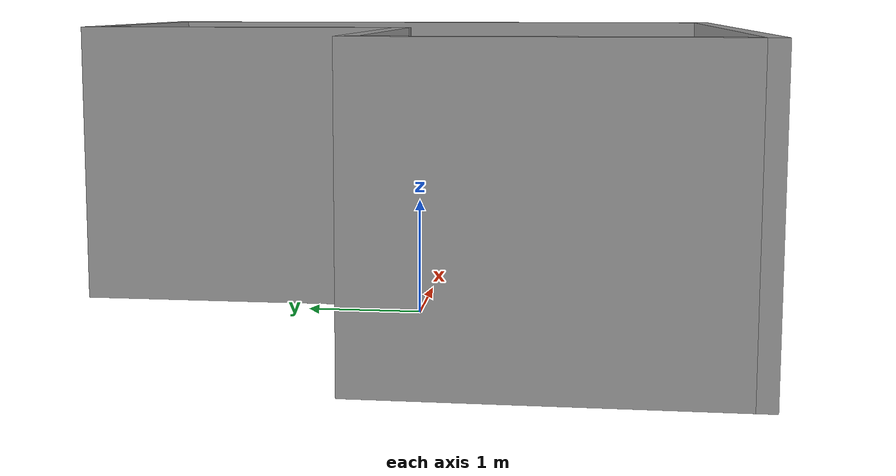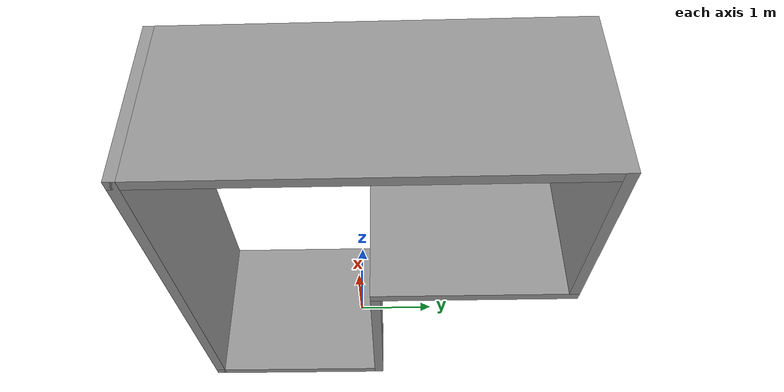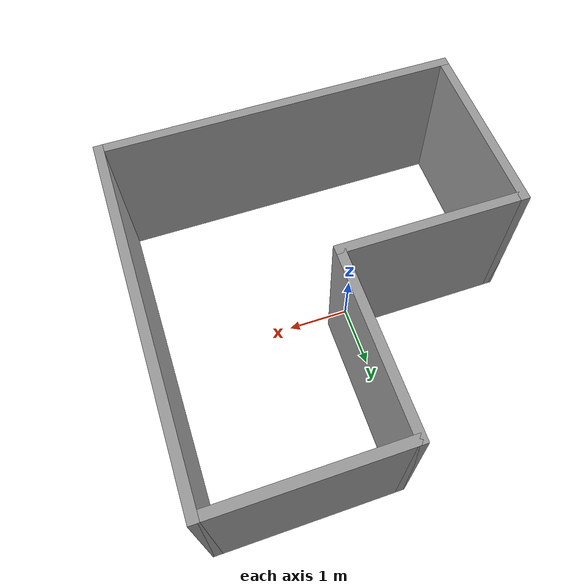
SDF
<?xml version='1.0'?>
<sdf version='1.6'>
  <model name='simple'>
    <pose frame=''>0.29 0.2 0 0 -0 0</pose>
    <link name='Wall_0'>
      <collision name='Wall_0_Collision'>
        <geometry>
          <box>
            <size>5.85 0.15 2.5</size>
          </box>
        </geometry>
        <pose frame=''>0 0 1.25 0 -0 0</pose>
      </collision>
      <visual name='Wall_0_Visual'>
        <pose frame=''>0 0 1.25 0 -0 0</pose>
        <geometry>
          <box>
            <size>5.85 0.15 2.5</size>
          </box>
        </geometry>
        <material>
          <script>
            <uri>file://media/materials/scripts/gazebo.material</uri>
            <name>Gazebo/Grey</name>
          </script>
          <ambient>1 1 1 1</ambient>
        </material>
        <meta>
          <layer>0</layer>
        </meta>
      </visual>
      <pose frame=''>0 -2.85 0 0 -0 3.14159</pose>
    </link>
    <link name='Wall_10'>
      <collision name='Wall_10_Collision'>
        <geometry>
          <box>
            <size>5.85 0.15 2.5</size>
          </box>
        </geometry>
        <pose frame=''>0 0 1.25 0 -0 0</pose>
      </collision>
      <visual name='Wall_10_Visual'>
        <pose frame=''>0 0 1.25 0 -0 0</pose>
        <geometry>
          <box>
            <size>5.85 0.15 2.5</size>
          </box>
        </geometry>
        <material>
          <script>
            <uri>file://media/materials/scripts/gazebo.material</uri>
            <name>Gazebo/Grey</name>
          </script>
          <ambient>1 1 1 1</ambient>
        </material>
        <meta>
          <layer>0</layer>
        </meta>
      </visual>
      <pose frame=''>2.85 0 0 0 0 -1.5708</pose>
    </link>
    <link name='Wall_3'>
      <collision name='Wall_3_Collision'>
        <geometry>
          <box>
            <size>3 0.15 2.5</size>
          </box>
        </geometry>
        <pose frame=''>0 0 1.25 0 -0 0</pose>
      </collision>
      <visual name='Wall_3_Visual'>
        <pose frame=''>0 0 1.25 0 -0 0</pose>
        <geometry>
          <box>
            <size>3 0.15 2.5</size>
          </box>
        </geometry>
        <material>
          <script>
            <uri>file://media/materials/scripts/gazebo.material</uri>
            <name>Gazebo/Grey</name>
          </script>
          <ambient>1 1 1 1</ambient>
        </material>
        <meta>
          <layer>0</layer>
        </meta>
      </visual>
      <pose frame=''>-2.85 -1.425 0 0 -0 1.5708</pose>
    </link>
    <link name='Wall_4'>
      <collision name='Wall_4_Collision'>
        <geometry>
          <box>
            <size>3 0.15 2.5</size>
          </box>
        </geometry>
        <pose frame=''>0 0 1.25 0 -0 0</pose>
      </collision>
      <visual name='Wall_4_Visual'>
        <pose frame=''>0 0 1.25 0 -0 0</pose>
        <geometry>
          <box>
            <size>3 0.15 2.5</size>
          </box>
        </geometry>
        <material>
          <script>
            <uri>file://media/materials/scripts/gazebo.material</uri>
            <name>Gazebo/Grey</name>
          </script>
          <ambient>1 1 1 1</ambient>
        </material>
        <meta>
          <layer>0</layer>
        </meta>
      </visual>
      <pose frame=''>-1.425 0 0 0 -0 0</pose>
    </link>
    <link name='Wall_7'>
      <collision name='Wall_7_Collision'>
        <geometry>
          <box>
            <size>3 0.15 2.5</size>
          </box>
        </geometry>
        <pose frame=''>0 0 1.25 0 -0 0</pose>
      </collision>
      <visual name='Wall_7_Visual'>
        <pose frame=''>0 0 1.25 0 -0 0</pose>
        <geometry>
          <box>
            <size>3 0.15 2.5</size>
          </box>
        </geometry>
        <material>
          <script>
            <uri>file://media/materials/scripts/gazebo.material</uri>
            <name>Gazebo/Grey</name>
          </script>
          <ambient>1 1 1 1</ambient>
        </material>
        <meta>
          <layer>0</layer>
        </meta>
      </visual>
      <pose frame=''>0 1.425 0 0 -0 1.5708</pose>
    </link>
    <link name='Wall_9'>
      <collision name='Wall_9_Collision'>
        <geometry>
          <box>
            <size>3 0.15 2.5</size>
          </box>
        </geometry>
        <pose frame=''>0 0 1.25 0 -0 0</pose>
      </collision>
      <visual name='Wall_9_Visual'>
        <pose frame=''>0 0 1.25 0 -0 0</pose>
        <geometry>
          <box>
            <size>3 0.15 2.5</size>
          </box>
        </geometry>
        <material>
          <script>
            <uri>file://media/materials/scripts/gazebo.material</uri>
            <name>Gazebo/Grey</name>
          </script>
          <ambient>1 1 1 1</ambient>
        </material>
        <meta>
          <layer>0</layer>
        </meta>
      </visual>
      <pose frame=''>1.425 2.85 0 0 -0 0</pose>
    </link>
    <static>1</static>
  </model>
</sdf>
